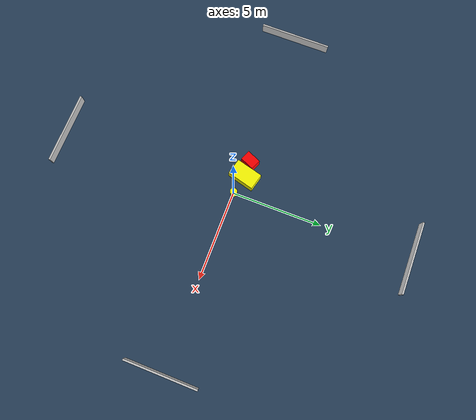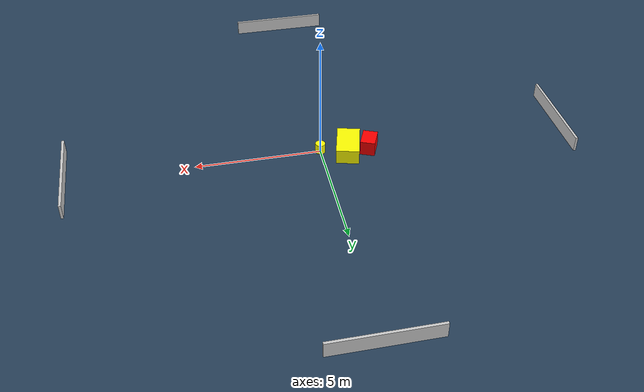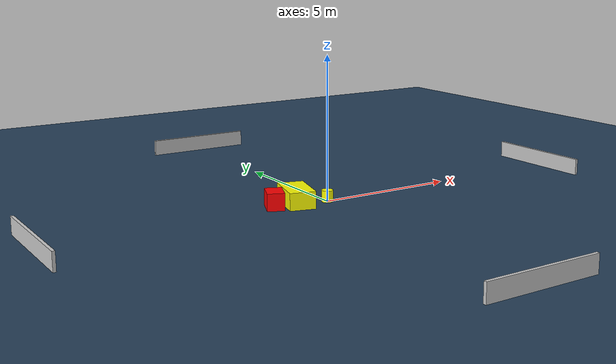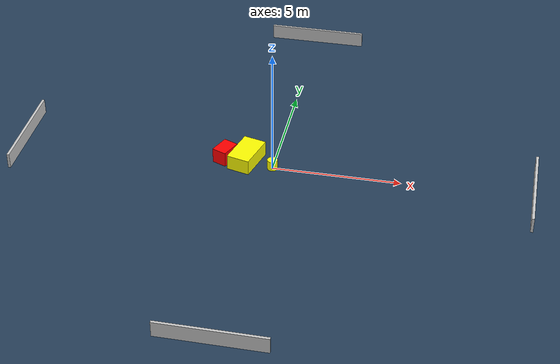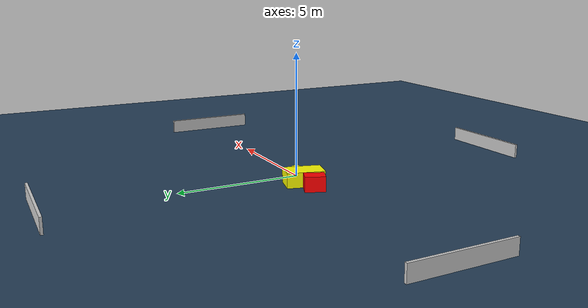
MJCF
<?xml version="1.0" ?>
<mujoco model="generated_environment">
  <option timestep="0.01" integrator="RK4" cone="elliptic"/>
  <default>
    <geom density="1"/>
  </default>
  <asset>
    <texture builtin="gradient" height="3072" name="skybox" rgb1="0.3 0.5 0.7" rgb2="0 0 0" type="skybox" width="512"/>
    <texture builtin="checker" height="300" name="groundplane" rgb1="0.2 0.3 0.4" rgb2="0.1 0.2 0.3" type="2d" width="300"/>
    <material name="groundplane" reflectance="0.2" texrepeat="5 5" texture="groundplane"/>
  </asset>
  <worldbody>
    <light dir="0 0 -1" directional="true" pos="0 0 1.5"/>
    <geom condim="3" friction="0.5 0.005 0.001" material="groundplane" name="floor" pos="0 0 0" size="0 0 0.05" type="plane"/>
    <body name="walls">
      <geom name="wall_1" condim="4" pos="-10.0 0.0 0.3" rgba="0.800000011920929 0.800000011920929 0.800000011920929 1.0" size="0.05 2.0 0.3" type="box"/>
      <geom name="wall_2" condim="4" pos="10.0 0.0 0.3" rgba="0.800000011920929 0.800000011920929 0.800000011920929 1.0" size="0.05 2.0 0.3" type="box"/>
      <geom name="wall_3" condim="4" pos="0.0 -10.0 0.3" rgba="0.800000011920929 0.800000011920929 0.800000011920929 1.0" size="2.0 0.05 0.3" type="box"/>
      <geom name="wall_4" condim="4" pos="0.0 10.0 0.3" rgba="0.800000011920929 0.800000011920929 0.800000011920929 1.0" size="2.0 0.05 0.3" type="box"/>
    </body>
    <body name="robot">
      <joint name="joint_x" type="slide" pos="0 0 0" axis="1 0 0"/>
      <joint name="joint_y" type="slide" pos="0 0 0" axis="0 1 0"/>
      <geom name="robot" type="cylinder" pos="0.0 0.0 0.2" size="0.2 0.2 0.0" mass="5.0" friction="1.0 0.005 0.0001" condim="4" rgba="1.0 1.0 0.0 1.0"/>
    </body>
    <body name="obstacle_1_movable">
      <geom name="obstacle_1_movable" condim="4" pos="-1.077734404404238 0.24435015905833204 0.3" euler="0 0 345.5010667732121" friction="0.0 0.005 0.001" rgba="1.0 1.0 0.0 1.0" size="0.4550936549164058 0.7538784971345018 0.3" type="box" mass="0.1"/>
      <joint type="free"/>
    </body>
    <body name="obstacle_2_static">
      <geom name="obstacle_2_static" condim="4" pos="-1.93435198507017 0.2380118405523288 0.3" euler="0 0 247.0558423136813" friction="0.0 0.005 0.001" rgba="1.0 0.0 0.0 1.0" size="0.40351563395379386 0.2950906347915688 0.3" type="box"/>
    </body>
  </worldbody>
  <actuator>
    <motor name="actuator_x" joint="joint_x" gear="1" ctrlrange="-1 1"/>
    <motor name="actuator_y" joint="joint_y" gear="1" ctrlrange="-1 1"/>
  </actuator>
</mujoco>
